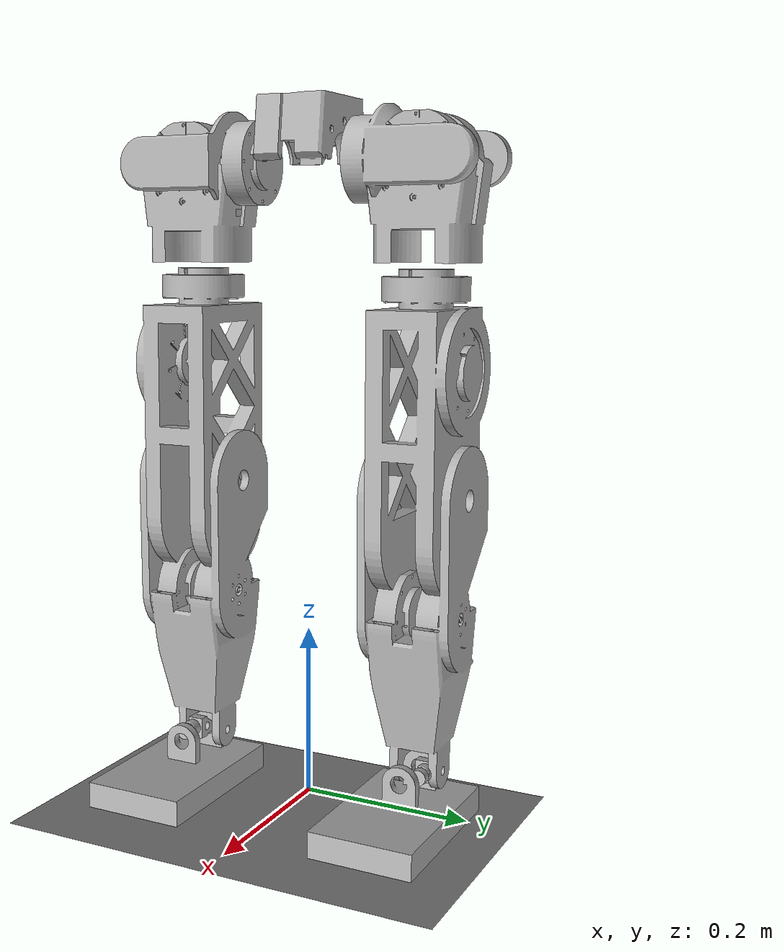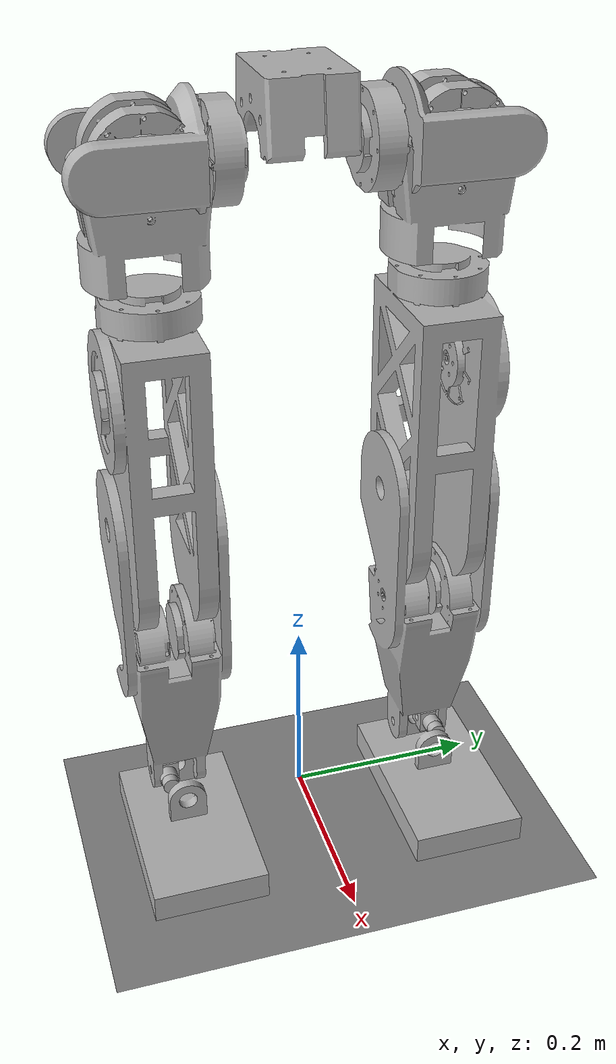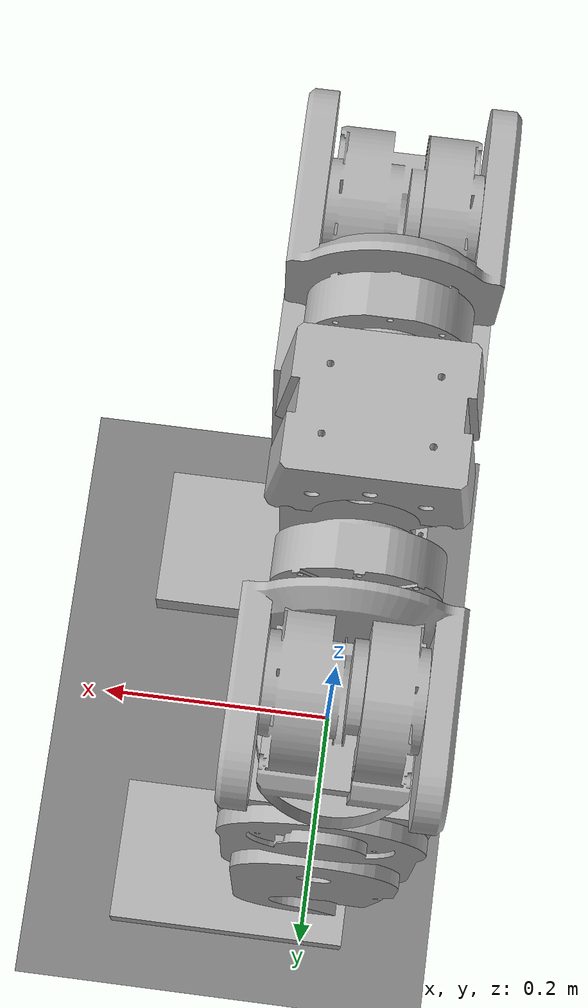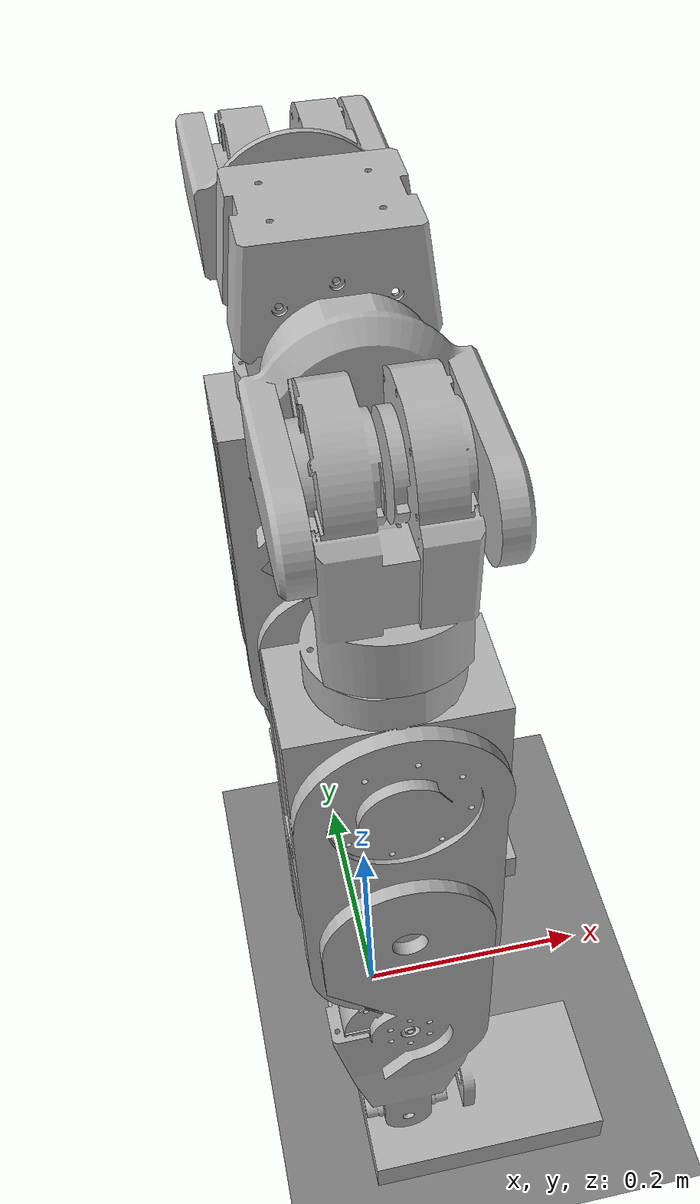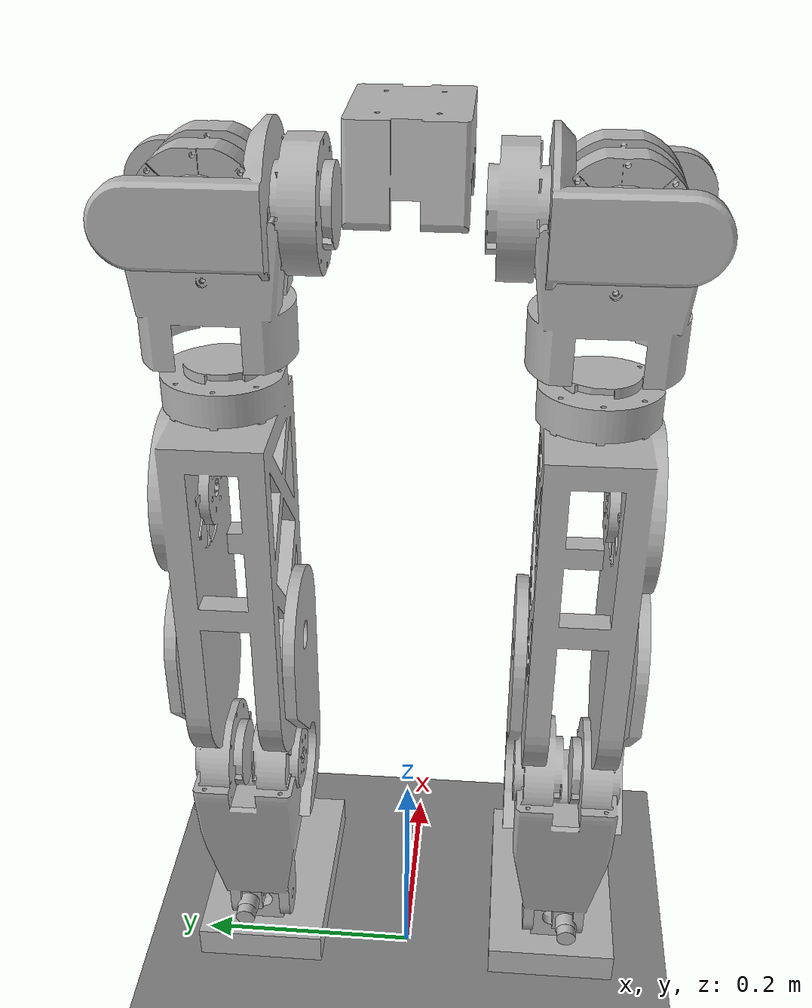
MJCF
<mujoco model="nemo scene">
  <include file="g2.xml"/>

  <statistic center="1 -0.8 1.1" extent=".3"/>

  <visual>
    <headlight diffuse="0.6 0.6 0.6" ambient="0.1 0.1 0.1" specular="0.9 0.9 0.9"/>
    <rgba haze="0.15 0.25 0.35 1"/>
    <global azimuth="140" elevation="-20"/>
  </visual>

  <asset>
    <texture type="skybox" builtin="gradient" rgb1="0.3 0.5 0.7" rgb2="0 0 0" width="512" height="3072"/>
    <texture type="2d" name="groundplane" builtin="checker" mark="edge" rgb1="0.2 0.3 0.4" rgb2="0.1 0.2 0.3"
      markrgb="0.8 0.8 0.8" width="300" height="300"/>
    <material name="groundplane" texture="groundplane" texuniform="true" texrepeat="5 5" reflectance="0.2"/>
  </asset>

  <worldbody>
    <geom conaffinity="1" contype="1" condim="3" friction="1 .1 .1" name="floor" pos="0 0 0" size="20 20 0.125" type="plane" rgba="0.5 0.5 0.5 1.0"/>
  </worldbody>
</mujoco>

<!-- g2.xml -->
<mujoco model="g2">
<compiler angle="radian" meshdir="assets" autolimits="true" />

  <option timestep="0.0035" iterations="8" ls_iterations="4">
    <flag eulerdamp="disable" />
  </option>

  <custom>
        <numeric data="2500" name="constraint_limit_stiffness" />
        <numeric data="27000" name="constraint_stiffness" />
        <numeric data="30" name="constraint_ang_damping" />
        <numeric data="80" name="constraint_vel_damping" />
        <numeric data="-0.05" name="ang_damping" />
        <numeric data="0.5" name="joint_scale_pos" />
        <numeric data="0.1" name="joint_scale_ang" />
        <numeric data="0" name="spring_mass_scale" />
        <numeric data="1" name="spring_inertia_scale" />
        <numeric data="20" name="matrix_inv_iterations" />
        <numeric data="15" name="solver_maxls" />
  </custom>

  <visual>
    <global ellipsoidinertia="true" />
  </visual>
  <default>
    <geom contype="0" conaffinity="0" condim="3" solref="0.005 1" />
    <equality solref="0.005 1" />
    <default class="robot">
      <site rgba="1 0 0 1" size="0.01" group="5" />
      <default class="visual">
        <geom group="2" type="mesh" contype="0" conaffinity="0" density="0" material="metallic" />
      </default>
      <default class="collision">
        <geom conaffinity="1" contype="1" group="3" rgba="0.5 0.5 0.5 1" material="metallic" />
      </default>
    </default>
  </default>

  <asset>
    <material name="metallic" rgba="0.7 0.7 0.7 1" />
    <material name="black" rgba="0.2 0.2 0.2 1" />
    <material name="transparent" rgba="0 0 0 0" />

    <mesh file="pelvis.stl" />
    <mesh name="l_hip_pitch" file="l_hip_pitch.stl" />
    <mesh name="l_hip_roll" file="l_hip_roll.stl" />
    <mesh name="l_hip_yaw" file="l_hip_yaw.stl" />
    <mesh name="l_knee" file="l_knee.stl" />
    <mesh name="l_foot_pitch" file="l_foot_pitch.stl" />
    <mesh name="l_foot_roll" file="l_foot_roll.stl" />

    <mesh name="r_hip_pitch" file="l_hip_pitch.stl" scale="1 -1 1" />
    <mesh name="r_hip_roll" file="l_hip_roll.stl" scale="1 -1 1" />
    <mesh name="r_hip_yaw" file="l_hip_yaw.stl" scale="1 -1 1" />
    <mesh name="r_knee" file="l_knee.stl" scale="1 -1 1" />
    <mesh name="r_foot_pitch" file="l_foot_pitch.stl" scale="1 -1 1" />
    <mesh name="r_foot_roll" file="l_foot_roll.stl" scale="1 -1 1" />

  </asset>
<worldbody>
  <light name="spotlight" mode="targetbodycom" target="pelvis" pos="0 -6 4" cutoff="30" />
  <body name="pelvis" pos="0.0 0.0 0.8073" childclass="robot">
    <inertial pos="0.0 0.0 0.783" mass="0.93335" fullinertia="0.00136452 0.00167626 0.00081819 0.0 0.0 0.0" />
    <freejoint name="floating_base" />
    <geom type="mesh" class="visual" mesh="pelvis" />
    <body name="l_hip_pitch" pos="0.0 0.0522 -0.07">
      <inertial pos="0.0 -0.01595 0.0" mass="1.60736" fullinertia="0.00349749 0.00312976 0.00505913 1.88e-06 -4.7e-07 1.11e-06" />
      <joint armature="0.005" damping="2" frictionloss="0.1" actuatorfrcrange="-46 46" name="l_hip_pitch" axis="0 1 0" range="-1.3 1.3" />
      <geom type="mesh" class="visual" mesh="l_hip_pitch" />
      <body name="l_hip_roll" pos="0.0 0.09 0.0">
        <inertial pos="0.0 -0.0 -0.02771" mass="2.47257" fullinertia="0.00032137 0.00032796 0.00054322 -4e-07 -5e-07 -3e-07" />
        <joint armature="0.005" damping="2" frictionloss="0.1" actuatorfrcrange="-23 23" name="l_hip_roll" axis="1 0 0" range="-0.35 1.0" />
        <geom type="mesh" class="visual" mesh="l_hip_roll" />
        <body name="l_hip_yaw" pos="0.0 0.0 -0.1173">
          <inertial pos="0.0 -0.00786 -0.12008" mass="5.19381" fullinertia="0.05912224 0.06227691 0.01200933 2.51e-06 7.14e-06 -0.00089123" />
          <joint armature="0.005" damping="2" frictionloss="0.1" actuatorfrcrange="-23 23" name="l_hip_yaw" axis="0 0 1" range="-2.5 2.5" />
          <geom type="mesh" class="visual" mesh="l_hip_yaw" />
          <body name="l_knee" pos="0.0 0.0 -0.25">
            <inertial pos="0.0 -0.0 -0.15491" mass="4.49524" fullinertia="0.0345223 0.03340654 0.00798025 5.9e-07 0.00034851 -0.0" />
            <joint armature="0.005" damping="2" frictionloss="0.1" actuatorfrcrange="-46 46" name="l_knee" axis="0 1 0" range="-2 2" />
            <geom type="mesh" class="visual" mesh="l_knee" />
            <body name="l_foot_pitch" pos="0.0 0.0125 -0.315">
              <inertial pos="0.0 -0.0125 0.0" mass="0.07176" fullinertia="5.72e-06 2.53e-05 2.504e-05 -0.0 6.7e-07 -0.0" />
              <joint armature="0.005" damping="2" frictionloss="0.1" actuatorfrcrange="-46 46" name="l_foot_pitch" axis="0 1 0" range="-1.0 1.0" />
              <geom type="mesh" class="visual" mesh="l_foot_pitch" />
              <body name="l_foot_roll" pos="0.025 -0.0125 0.0">
                <inertial pos="0.01359 -0.0 0.03878" mass="2.01496" fullinertia="0.00258259 0.00689362 0.00899697 -0.0 -9.461e-05 -0.0" />
                <joint armature="0.005" damping="2" frictionloss="0.1" actuatorfrcrange="-23 23" name="l_foot_roll" axis="1 0 0" range="-1 1" />
                <geom type="mesh" class="visual" mesh="l_foot_roll" />
                <geom class="collision" name="left_foot" pos="0.04 0 -0.04" size="0.10 0.06 0.015" type="box" />
                <site name="left_foot_p1" pos="0.05 0.0 -0.0762" />
                <site name="left_foot_p2" pos="-0.05 0.0 -0.0762" />
                <site name="left_foot_p3" pos="0.0 0.05 -0.0762" />
              </body>
            </body>
          </body>
        </body>
      </body>
    </body>

    <body name="r_hip_pitch" pos="0.0 -0.0522 -0.07">
      <inertial pos="0.0 -0.01595 0.0" mass="1.60736" fullinertia="0.00349749 0.00312976 0.00505913 1.88e-06 -4.7e-07 1.11e-06" />
      <joint armature="0.005" damping="2" frictionloss="0.1" actuatorfrcrange="-46 46" name="r_hip_pitch" axis="0 1 0" range="-1.3 1.3" />
      <geom type="mesh" class="visual" mesh="r_hip_pitch" />
      <body name="r_hip_roll" pos="0.0 -0.09 0.0">
        <inertial pos="0.0 -0.0 -0.02771" mass="2.47257" fullinertia="0.00032137 0.00032796 0.00054322 -4e-07 -5e-07 -3e-07" />
        <joint armature="0.005" damping="2" frictionloss="0.1" actuatorfrcrange="-23 23" name="r_hip_roll" axis="1 0 0" range="-1.0 0.35" />
        <geom type="mesh" class="visual" mesh="r_hip_roll" />
        <body name="r_hip_yaw" pos="0.0 -0.0 -0.1173">
          <inertial pos="0.0 -0.00786 -0.12008" mass="5.19381" fullinertia="0.05912224 0.06227691 0.01200933 2.51e-06 7.14e-06 -0.00089123" />
          <joint armature="0.005" damping="2" frictionloss="0.1" actuatorfrcrange="-23 23" name="r_hip_yaw" axis="0 0 1" range="-2.5 2.5" />
          <geom type="mesh" class="visual" mesh="r_hip_yaw" />
          <body name="r_knee" pos="0.0 -0.0 -0.25">
            <inertial pos="0.0 -0.0 -0.15491" mass="4.49524" fullinertia="0.0345223 0.03340654 0.00798025 5.9e-07 0.00034851 -0.0" />
            <joint armature="0.005" damping="2" frictionloss="0.1" actuatorfrcrange="-46 46" name="r_knee" axis="0 1 0" range="-2 2" />
            <geom type="mesh" class="visual" mesh="l_knee" />
            <body name="r_foot_pitch" pos="0.0 -0.0125 -0.315">
              <inertial pos="0.0 -0.0125 0.0" mass="0.07176" fullinertia="5.72e-06 2.53e-05 2.504e-05 -0.0 6.7e-07 -0.0" />
              <joint armature="0.005" damping="2" frictionloss="0.1" actuatorfrcrange="-46 46" name="r_foot_pitch" axis="0 1 0" range="-1.0 1.0" />
              <geom type="mesh" class="visual" mesh="l_foot_pitch" />
              <body name="r_foot_roll" pos="0.025 0.0125 0.0">
                <inertial pos="0.01359 -0.0 0.03878" mass="2.01496" fullinertia="0.00258259 0.00689362 0.00899697 -0.0 -9.461e-05 -0.0" />
                <joint armature="0.005" damping="2" frictionloss="0.1" actuatorfrcrange="-23 23" name="r_foot_roll" axis="1 0 0" range="-1 1" />
                <geom type="mesh" class="visual" mesh="l_foot_roll" />
                <geom class="collision" name="right_foot" pos="0.04 0 -0.04" size="0.10 0.06 0.015" type="box" />
                <site name="right_foot_p1" pos="0.05 0.0 -0.0762" />
                <site name="right_foot_p2" pos="-0.05 0.0 -0.0762" />
                <site name="right_foot_p3" pos="0.0 -0.05 -0.0762" />
              </body>
            </body>
          </body>
        </body>
      </body>
    </body>
    <site name="pelvis_back" pos="-0.05 0.0 0.0" />
    <site name="pelvis_front" pos="0.05 0.0 0.0" />
    <site name="head" pos="0.0 0.0 0.5" />
    <site name="imu_in_pelvis" size="0.01" pos="0.0 0.0 0.0" />
    <light name="tracking" mode="trackcom" pos="0 0 2" />
  </body>
</worldbody>
<actuator>
  <position kp="40.0" class="robot" name="l_hip_pitch" joint="l_hip_pitch" inheritrange="1" forcerange="-11.85 11.85" />
  <position kp="30.0" class="robot" name="l_hip_roll" joint="l_hip_roll" inheritrange="1" forcerange="-23.7 23.7" />
  <position kp="30.0" class="robot" name="l_hip_yaw" joint="l_hip_yaw" inheritrange="1" forcerange="-11.85 11.85" />
  <position kp="40.0" class="robot" name="l_knee" joint="l_knee" inheritrange="1" forcerange="-23.7 23.7" />
  <position kp="8.0" class="robot" name="l_foot_pitch" joint="l_foot_pitch" inheritrange="1" forcerange="-23.7 23.7" />
  <position kp="4.0" class="robot" name="l_foot_roll" joint="l_foot_roll" inheritrange="1" forcerange="-23.7 23.7" />

  <position kp="40.0" class="robot" name="r_hip_pitch" joint="r_hip_pitch" inheritrange="1" forcerange="-11.85 11.85" />
  <position kp="30.0" class="robot" name="r_hip_roll" joint="r_hip_roll" inheritrange="1" forcerange="-23.7 23.7" />
  <position kp="30.0" class="robot" name="r_hip_yaw" joint="r_hip_yaw" inheritrange="1" forcerange="-11.85 11.85" />
  <position kp="40.0" class="robot" name="r_knee" joint="r_knee" inheritrange="1" forcerange="-23.7 23.7" />
  <position kp="8.0" class="robot" name="r_foot_pitch" joint="r_foot_pitch" inheritrange="1" forcerange="-23.7 23.7" />
  <position kp="4.0" class="robot" name="r_foot_roll" joint="r_foot_roll" inheritrange="1" forcerange="-23.7 23.7" />

  <velocity kv="4" class="robot" name="l_hip_pitch_v" joint="l_hip_pitch" ctrlrange="-20 20" forcerange="-11.85 11.85" />
  <velocity kv="2" class="robot" name="l_hip_roll_v" joint="l_hip_roll" ctrlrange="-20 20" forcerange="-23.7 23.7" />
  <velocity kv="2" class="robot" name="l_hip_yaw_v" joint="l_hip_yaw" ctrlrange="-20 20" forcerange="-11.85 11.85" />
  <velocity kv="4" class="robot" name="l_knee_v" joint="l_knee" ctrlrange="-20 20" forcerange="-23.7 23.7" />
  <velocity kv="4" class="robot" name="l_foot_pitch_v" joint="l_foot_pitch" ctrlrange="-20 20" forcerange="-23.7 23.7" />
  <velocity kv="2" class="robot" name="l_foot_roll_v" joint="l_foot_roll" ctrlrange="-20 20" forcerange="-23.7 23.7" />

  <velocity kv="4" class="robot" name="r_hip_pitch_v" joint="r_hip_pitch" ctrlrange="-20 20" forcerange="-11.85 11.85" />
  <velocity kv="2" class="robot" name="r_hip_roll_v" joint="r_hip_roll" ctrlrange="-20 20" forcerange="-23.7 23.7" />
  <velocity kv="2" class="robot" name="r_hip_yaw_v" joint="r_hip_yaw" ctrlrange="-20 20" forcerange="-11.85 11.85" />
  <velocity kv="4" class="robot" name="r_knee_v" joint="r_knee" ctrlrange="-20 20" forcerange="-23.7 23.7" />
  <velocity kv="4" class="robot" name="r_foot_pitch_v" joint="r_foot_pitch" ctrlrange="-20 20" forcerange="-23.7 23.7" />
  <velocity kv="2" class="robot" name="r_foot_roll_v" joint="r_foot_roll" ctrlrange="-20 20" forcerange="-23.7 23.7" />
</actuator>

<keyframe>
    <key name="stand" qpos="       0 0 0.783       1 0 0 0       0 0 0 0 0 0       0 0 0 0 0 0       " />
</keyframe>

<sensor>
    <velocimeter site="imu_in_pelvis" name="local_linvel_pelvis" />
    <accelerometer site="imu_in_pelvis" name="accelerometer_pelvis" />
    <gyro site="imu_in_pelvis" name="gyro_pelvis" />
</sensor>

</mujoco>
